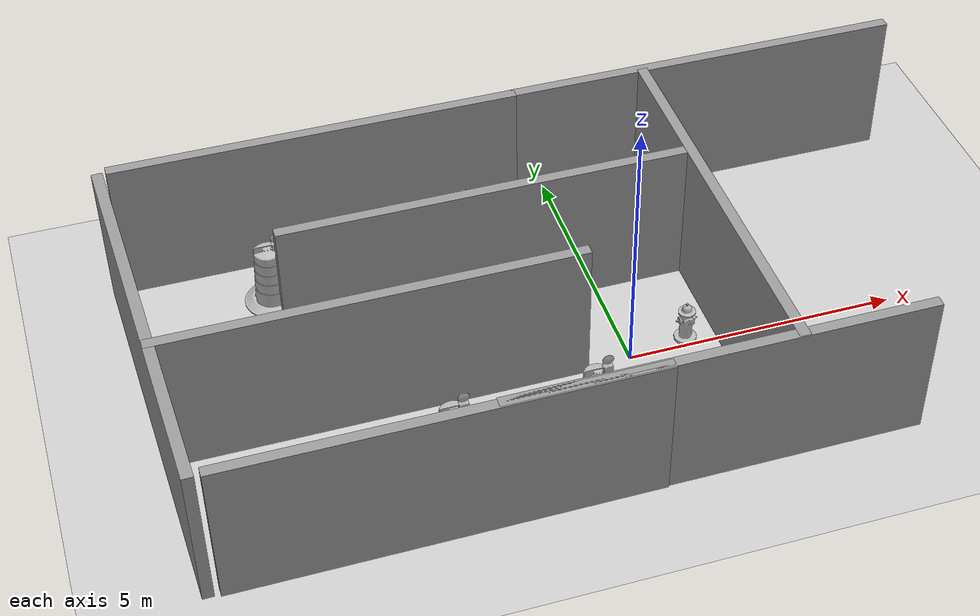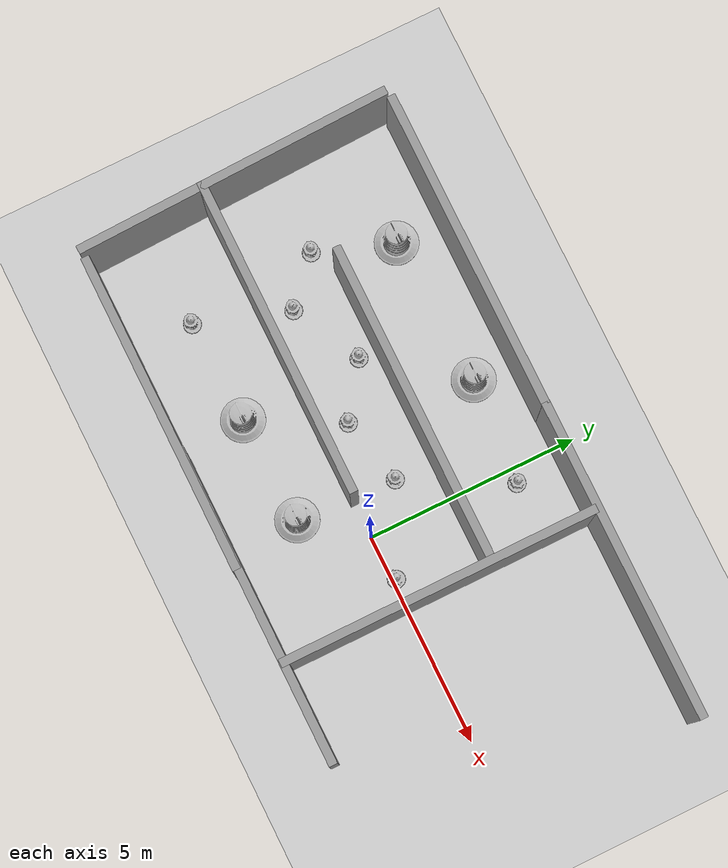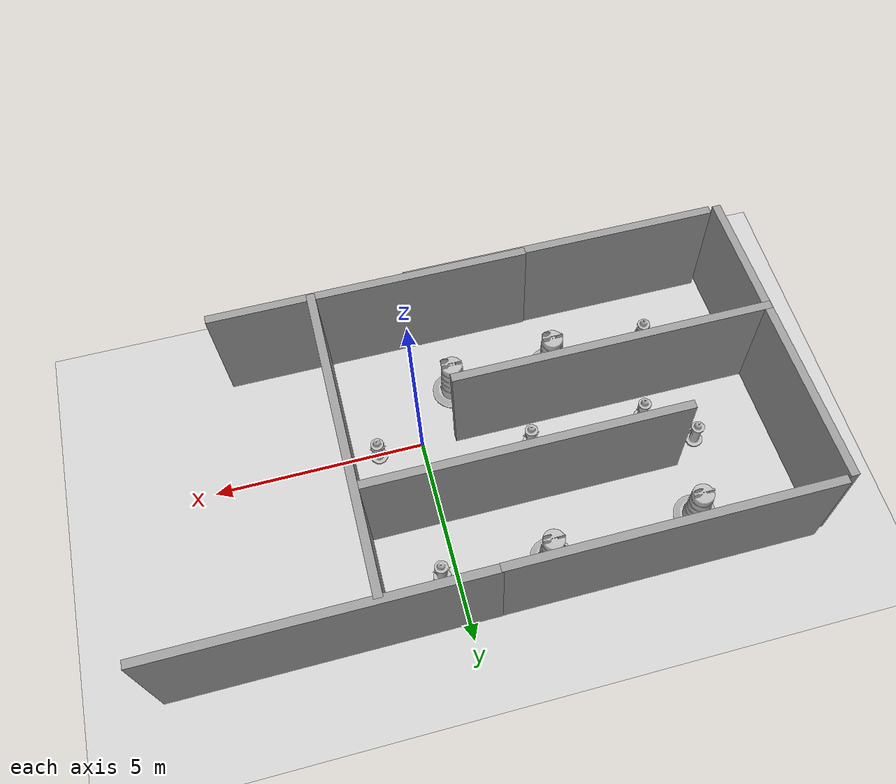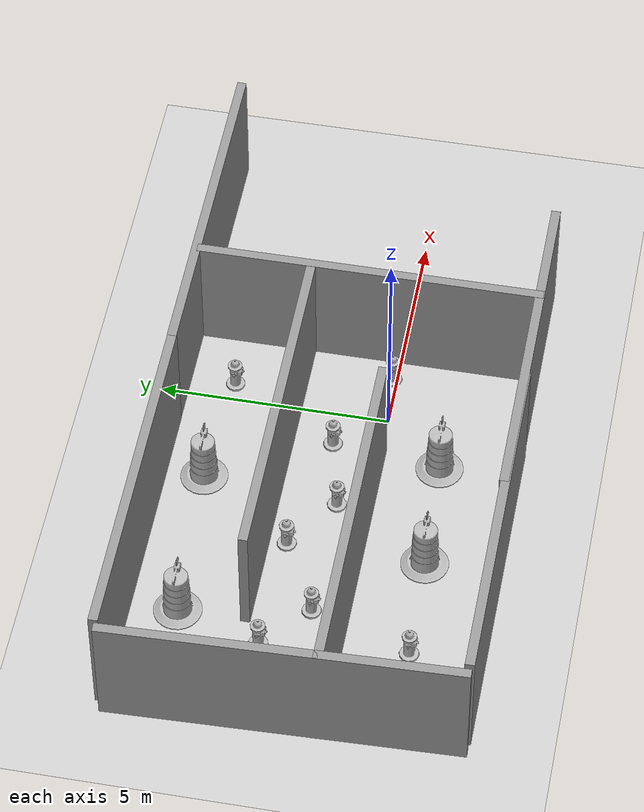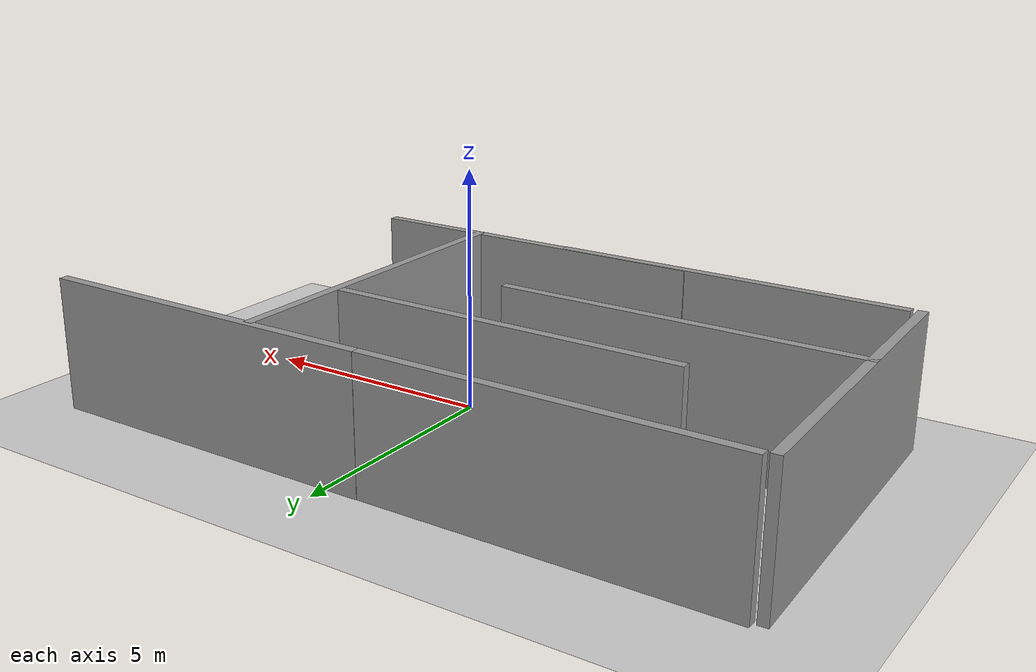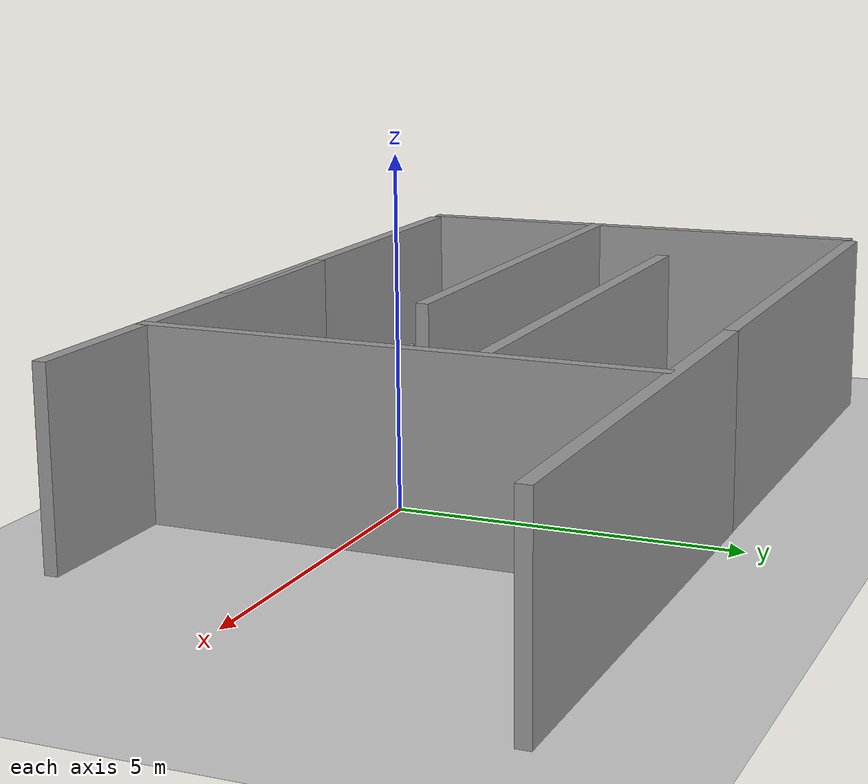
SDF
<sdf version="1.6">
 <world name="default">
  <light name="sun" type="directional">
   <pose>0 0 10 0 -0 0</pose>
   <diffuse>0.8 0.8 0.8 1</diffuse>
   <specular>0.2 0.2 0.2 1</specular>
   <attenuation>
    <range>1000</range>
    <constant>0.9</constant>
    <linear>0.01</linear>
    <quadratic>0.001</quadratic>
   </attenuation>
   <direction>-0.5 0.1 -0.9</direction>
  </light>
  <model name="ground_plane">
   <static>1</static>
   <link name="link">
    <collision name="collision">
     <geometry><plane><normal>0 0 1</normal><size>100 100</size></plane></geometry>
     <surface><friction><ode><mu>100</mu><mu2>50</mu2></ode></friction></surface>
    </collision>
    <visual name="visual">
     <cast_shadows>0</cast_shadows>
     <geometry><plane><normal>0 0 1</normal><size>100 100</size></plane></geometry>
     <material>
      <script><uri>file://media/materials/scripts/gazebo.material</uri><name>Gazebo/Grey</name></script>
     </material>
    </visual>
    <velocity_decay><linear>0</linear><angular>0</angular></velocity_decay>
   </link>
  </model>
  <physics name="default_physics" default="0" type="ode">
   <max_step_size>0.001</max_step_size>
   <real_time_factor>1</real_time_factor>
   <real_time_update_rate>1000</real_time_update_rate>
  </physics>
  <scene><ambient>0.4 0.4 0.4 1</ambient><background>0.7 0.7 0.7 1</background><shadows>1</shadows></scene>
  <spherical_coordinates>
   <surface_model>EARTH_WGS84</surface_model>
   <latitude_deg>0</latitude_deg>
   <longitude_deg>0</longitude_deg>
   <elevation>0</elevation>
   <heading_deg>0</heading_deg>
  </spherical_coordinates>
  <model name="grey_wall">
   <static>1</static>
   <link name="link">
    <pose>0 0 1.4 0 -0 0</pose>
    <collision name="collision"><geometry><box><size>7.5 0.2 2.8</size></box></geometry></collision>
    <visual name="visual">
     <cast_shadows>0</cast_shadows>
     <geometry><box><size>7.5 0.2 2.8</size></box></geometry>
     <material>
      <script>
       <uri>model://grey_wall/materials/scripts</uri>
       <uri>model://grey_wall/materials/textures</uri>
       <name>vrc/grey_wall</name>
      </script>
     </material>
    </visual>
    <velocity_decay><linear>0</linear><angular>0</angular></velocity_decay>
   </link>
   <pose>-4.45669 4.51369 0 0 -0 0</pose>
  </model>
  <model name="grey_wall_0">
   <static>1</static>
   <link name="link">
    <pose>0 0 1.4 0 -0 0</pose>
    <collision name="collision"><geometry><box><size>7.5 0.2 2.8</size></box></geometry></collision>
    <visual name="visual">
     <cast_shadows>0</cast_shadows>
     <geometry><box><size>7.5 0.2 2.8</size></box></geometry>
     <material>
      <script>
       <uri>model://grey_wall/materials/scripts</uri>
       <uri>model://grey_wall/materials/textures</uri>
       <name>vrc/grey_wall</name>
      </script>
     </material>
    </visual>
    <velocity_decay><linear>0</linear><angular>0</angular></velocity_decay>
   </link>
   <pose>-4.17438 -2.94975 0 0 -0 0</pose>
  </model>
  <model name="grey_wall_1">
   <static>1</static>
   <link name="link">
    <pose>0 0 1.4 0 -0 0</pose>
    <collision name="collision"><geometry><box><size>7.5 0.2 2.8</size></box></geometry></collision>
    <visual name="visual">
     <cast_shadows>0</cast_shadows>
     <geometry><box><size>7.5 0.2 2.8</size></box></geometry>
     <material>
      <script>
       <uri>model://grey_wall/materials/scripts</uri>
       <uri>model://grey_wall/materials/textures</uri>
       <name>vrc/grey_wall</name>
      </script>
     </material>
    </visual>
    <velocity_decay><linear>0</linear><angular>0</angular></velocity_decay>
   </link>
   <pose>-8.24091 0.730795 0 0 0 -1.53854</pose>
  </model>
  <model name="grey_wall_2">
   <static>1</static>
   <link name="link">
    <pose>0 0 1.4 0 -0 0</pose>
    <collision name="collision"><geometry><box><size>7.5 0.2 2.8</size></box></geometry></collision>
    <visual name="visual">
     <cast_shadows>0</cast_shadows>
     <geometry><box><size>7.5 0.2 2.8</size></box></geometry>
     <material>
      <script>
       <uri>model://grey_wall/materials/scripts</uri>
       <uri>model://grey_wall/materials/textures</uri>
       <name>vrc/grey_wall</name>
      </script>
     </material>
    </visual>
    <velocity_decay><linear>0</linear><angular>0</angular></velocity_decay>
   </link>
   <pose>-4.55904 0 0 0 -0 0</pose>
  </model>
  <model name="grey_wall_3">
   <static>1</static>
   <link name="link">
    <pose>0 0 1.4 0 -0 0</pose>
    <collision name="collision"><geometry><box><size>7.5 0.2 2.8</size></box></geometry></collision>
    <visual name="visual">
     <cast_shadows>0</cast_shadows>
     <geometry><box><size>7.5 0.2 2.8</size></box></geometry>
     <material>
      <script>
       <uri>model://grey_wall/materials/scripts</uri>
       <uri>model://grey_wall/materials/textures</uri>
       <name>vrc/grey_wall</name>
      </script>
     </material>
    </visual>
    <velocity_decay><linear>0</linear><angular>0</angular></velocity_decay>
   </link>
   <pose>1.76758 0.74778 0.00212 0 0 -1.57102</pose>
  </model>
  <model name="grey_wall_4">
   <static>1</static>
   <link name="link">
    <pose>0 0 1.4 0 -0 0</pose>
    <collision name="collision"><geometry><box><size>7.5 0.2 2.8</size></box></geometry></collision>
    <visual name="visual">
     <cast_shadows>0</cast_shadows>
     <geometry><box><size>7.5 0.2 2.8</size></box></geometry>
     <material>
      <script>
       <uri>model://grey_wall/materials/scripts</uri>
       <uri>model://grey_wall/materials/textures</uri>
       <name>vrc/grey_wall</name>
      </script>
     </material>
    </visual>
    <velocity_decay><linear>0</linear><angular>0</angular></velocity_decay>
   </link>
   <pose>0.431481 -2.92293 0 0 -0 0</pose>
  </model>
  <model name="grey_wall_5">
   <static>1</static>
   <link name="link">
    <pose>0 0 1.4 0 -0 0</pose>
    <collision name="collision"><geometry><box><size>7.5 0.2 2.8</size></box></geometry></collision>
    <visual name="visual">
     <cast_shadows>0</cast_shadows>
     <geometry><box><size>7.5 0.2 2.8</size></box></geometry>
     <material>
      <script>
       <uri>model://grey_wall/materials/scripts</uri>
       <uri>model://grey_wall/materials/textures</uri>
       <name>vrc/grey_wall</name>
      </script>
     </material>
    </visual>
    <velocity_decay><linear>0</linear><angular>0</angular></velocity_decay>
   </link>
   <pose>-2 2 0 0 -0 0</pose>
  </model>
  <model name="grey_wall_6">
   <static>1</static>
   <link name="link">
    <pose>0 0 1.4 0 -0 0</pose>
    <collision name="collision"><geometry><box><size>7.5 0.2 2.8</size></box></geometry></collision>
    <visual name="visual">
     <cast_shadows>0</cast_shadows>
     <geometry><box><size>7.5 0.2 2.8</size></box></geometry>
     <material>
      <script>
       <uri>model://grey_wall/materials/scripts</uri>
       <uri>model://grey_wall/materials/textures</uri>
       <name>vrc/grey_wall</name>
      </script>
     </material>
    </visual>
    <velocity_decay><linear>0</linear><angular>0</angular></velocity_decay>
   </link>
   <pose>3 4.52028 0 0 -0 0</pose>
  </model>
  <gravity>0 0 -9.8</gravity>
  <magnetic_field>6e-06 2.3e-05 -4.2e-05</magnetic_field>
  <atmosphere type="adiabatic"/>
  <model name="Construction Barrel">
   <static>1</static>
   <link name="link">
    <inertial>
     <pose>0 0 0.4 0 -0 0</pose>
     <mass>500</mass>
     <inertia><ixx>51.2096</ixx><iyy>51.2096</iyy><izz>25</izz><ixy>0</ixy><ixz>0</ixz><iyz>0</iyz></inertia>
    </inertial>
    <collision name="collision">
     <geometry>
      <mesh><uri>model://construction_barrel/meshes/construction_barrel.dae</uri><scale>1 1 1</scale></mesh>
     </geometry>
    </collision>
    <visual name="visual">
     <geometry>
      <mesh><uri>model://construction_barrel/meshes/construction_barrel.dae</uri><scale>1 1 1</scale></mesh>
     </geometry>
    </visual>
   </link>
   <pose>-1.08224 -1.29427 0 0 -0 0</pose>
  </model>
  <model name="Construction Barrel_0">
   <static>1</static>
   <link name="link">
    <inertial>
     <pose>0 0 0.4 0 -0 0</pose>
     <mass>500</mass>
     <inertia><ixx>51.2096</ixx><iyy>51.2096</iyy><izz>25</izz><ixy>0</ixy><ixz>0</ixz><iyz>0</iyz></inertia>
    </inertial>
    <collision name="collision">
     <geometry>
      <mesh><uri>model://construction_barrel/meshes/construction_barrel.dae</uri><scale>1 1 1</scale></mesh>
     </geometry>
    </collision>
    <visual name="visual">
     <geometry>
      <mesh><uri>model://construction_barrel/meshes/construction_barrel.dae</uri><scale>1 1 1</scale></mesh>
     </geometry>
    </visual>
   </link>
   <pose>-3.62207 -1.39679 0 0 -0 0</pose>
  </model>
  <model name="fire_hydrant">
   <static>1</static>
   <link name="link">
    <collision name="collision">
     <geometry><mesh><uri>model://fire_hydrant/meshes/fire_hydrant.dae</uri><scale>1 1 1</scale></mesh></geometry>
    </collision>
    <visual name="visual">
     <geometry><mesh><uri>model://fire_hydrant/meshes/fire_hydrant.dae</uri><scale>1 1 1</scale></mesh></geometry>
    </visual>
   </link>
   <pose>1.0753 0.090707 0 0 -0 0</pose>
  </model>
  <model name="Construction Barrel_1">
   <static>1</static>
   <link name="link">
    <inertial>
     <pose>0 0 0.4 0 -0 0</pose>
     <mass>500</mass>
     <inertia><ixx>51.2096</ixx><iyy>51.2096</iyy><izz>25</izz><ixy>0</ixy><ixz>0</ixz><iyz>0</iyz></inertia>
    </inertial>
    <collision name="collision">
     <geometry>
      <mesh><uri>model://construction_barrel/meshes/construction_barrel.dae</uri><scale>1 1 1</scale></mesh>
     </geometry>
    </collision>
    <visual name="visual">
     <geometry>
      <mesh><uri>model://construction_barrel/meshes/construction_barrel.dae</uri><scale>1 1 1</scale></mesh>
     </geometry>
    </visual>
   </link>
   <pose>-5.70833 3.43132 0 0 -0 0</pose>
  </model>
  <model name="Construction Barrel_2">
   <static>1</static>
   <link name="link">
    <inertial>
     <pose>0 0 0.4 0 -0 0</pose>
     <mass>500</mass>
     <inertia><ixx>51.2096</ixx><iyy>51.2096</iyy><izz>25</izz><ixy>0</ixy><ixz>0</ixz><iyz>0</iyz></inertia>
    </inertial>
    <collision name="collision">
     <geometry>
      <mesh><uri>model://construction_barrel/meshes/construction_barrel.dae</uri><scale>1 1 1</scale></mesh>
     </geometry>
    </collision>
    <visual name="visual">
     <geometry>
      <mesh><uri>model://construction_barrel/meshes/construction_barrel.dae</uri><scale>1 1 1</scale></mesh>
     </geometry>
    </visual>
   </link>
   <pose>-2.1698 3.60623 0 0 -0 0</pose>
  </model>
  <model name="fire_hydrant_0">
   <static>1</static>
   <link name="link">
    <collision name="collision">
     <geometry><mesh><uri>model://fire_hydrant/meshes/fire_hydrant.dae</uri><scale>1 1 1</scale></mesh></geometry>
    </collision>
    <visual name="visual">
     <geometry><mesh><uri>model://fire_hydrant/meshes/fire_hydrant.dae</uri><scale>1 1 1</scale></mesh></geometry>
    </visual>
   </link>
   <pose>0.341837 3.42692 0 0 -0 0</pose>
  </model>
  <model name="fire_hydrant_1">
   <static>1</static>
   <link name="link">
    <collision name="collision">
     <geometry><mesh><uri>model://fire_hydrant/meshes/fire_hydrant.dae</uri><scale>1 1 1</scale></mesh></geometry>
    </collision>
    <visual name="visual">
     <geometry><mesh><uri>model://fire_hydrant/meshes/fire_hydrant.dae</uri><scale>1 1 1</scale></mesh></geometry>
    </visual>
   </link>
   <pose>-6.03322 -1.47489 0 0 -0 0</pose>
  </model>
  <model name="fire_hydrant_2">
   <static>1</static>
   <link name="link">
    <collision name="collision">
     <geometry><mesh><uri>model://fire_hydrant/meshes/fire_hydrant.dae</uri><scale>1 1 1</scale></mesh></geometry>
    </collision>
    <visual name="visual">
     <geometry><mesh><uri>model://fire_hydrant/meshes/fire_hydrant.dae</uri><scale>1 1 1</scale></mesh></geometry>
    </visual>
   </link>
   <pose>-0.919028 1.04561 0 0 -0 0</pose>
  </model>
  <model name="fire_hydrant_3">
   <static>1</static>
   <link name="link">
    <collision name="collision">
     <geometry><mesh><uri>model://fire_hydrant/meshes/fire_hydrant.dae</uri><scale>1 1 1</scale></mesh></geometry>
    </collision>
    <visual name="visual">
     <geometry><mesh><uri>model://fire_hydrant/meshes/fire_hydrant.dae</uri><scale>1 1 1</scale></mesh></geometry>
    </visual>
   </link>
   <pose>-2.51294 0.668887 0 0 -0 0</pose>
  </model>
  <model name="fire_hydrant_4">
   <static>1</static>
   <link name="link">
    <collision name="collision">
     <geometry><mesh><uri>model://fire_hydrant/meshes/fire_hydrant.dae</uri><scale>1 1 1</scale></mesh></geometry>
    </collision>
    <visual name="visual">
     <geometry><mesh><uri>model://fire_hydrant/meshes/fire_hydrant.dae</uri><scale>1 1 1</scale></mesh></geometry>
    </visual>
   </link>
   <pose>-3.71134 1.51753 0 0 -0 0</pose>
  </model>
  <model name="fire_hydrant_5">
   <static>1</static>
   <link name="link">
    <collision name="collision">
     <geometry><mesh><uri>model://fire_hydrant/meshes/fire_hydrant.dae</uri><scale>1 1 1</scale></mesh></geometry>
    </collision>
    <visual name="visual">
     <geometry><mesh><uri>model://fire_hydrant/meshes/fire_hydrant.dae</uri><scale>1 1 1</scale></mesh></geometry>
    </visual>
   </link>
   <pose>-5.32289 0.687204 0 0 -0 0</pose>
  </model>
  <model name="fire_hydrant_6">
   <static>1</static>
   <link name="link">
    <collision name="collision">
     <geometry><mesh><uri>model://fire_hydrant/meshes/fire_hydrant.dae</uri><scale>1 1 1</scale></mesh></geometry>
    </collision>
    <visual name="visual">
     <geometry><mesh><uri>model://fire_hydrant/meshes/fire_hydrant.dae</uri><scale>1 1 1</scale></mesh></geometry>
    </visual>
   </link>
   <pose>-6.32574 1.61077 0 0 -0 0</pose>
  </model>
 </world>
</sdf>
